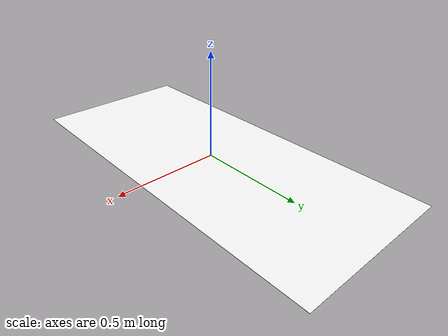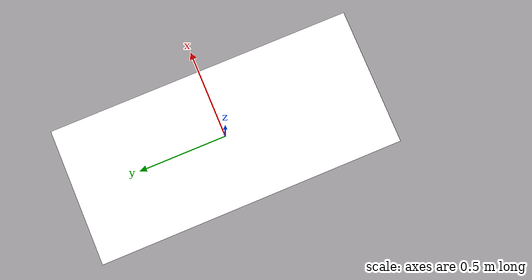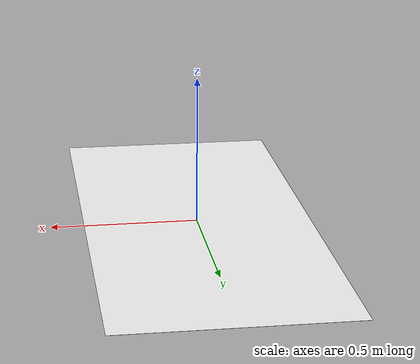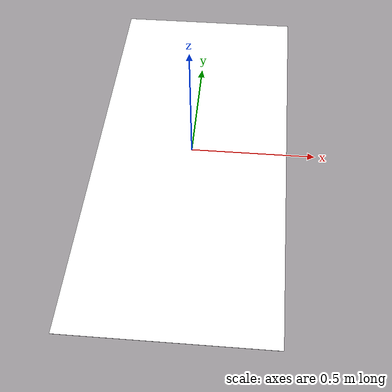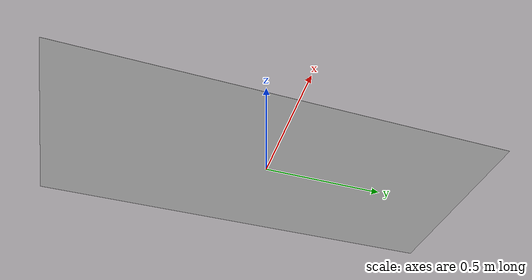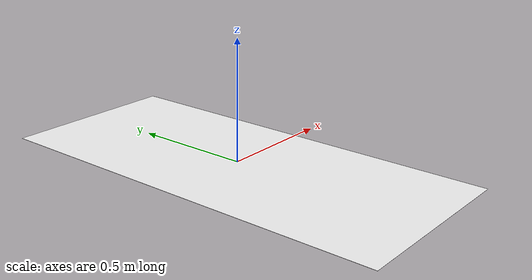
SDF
<?xml version='1.0'?>
<sdf version='1.6'>
  <model name='race_track10'>
    <static>true</static>
    <link name='link'>
      <visual name='visual'>
        <geometry>
          <box>
            <size>0.774 1.738 0.000553</size>
          </box>
        </geometry>
        <material>
          <script>
            <name>RaceTrack10/track10</name>
	    <uri>model://racetrack10/materials/scripts</uri>
            <uri>model://racetrack10/materials/textures</uri>
          </script>
          <ambient>1 1 1 1</ambient>
          <diffuse>1 1 1 1</diffuse>
          <specular>0.01 0.01 0.01 1</specular>
          <emissive>1 1 1 1</emissive>
        </material>
        <transparency>0</transparency>
      </visual>
      <collision name='collision'>
        <geometry>
          <box>
            <size>0.774 1.738 0.000553</size>
          </box>
        </geometry>
	<surface>
          <friction>
            <ode>
              <mu>100</mu>
              <mu2>50</mu2>
            </ode>
          </friction>
        </surface>
      </collision>
    </link>
  </model>
</sdf>
